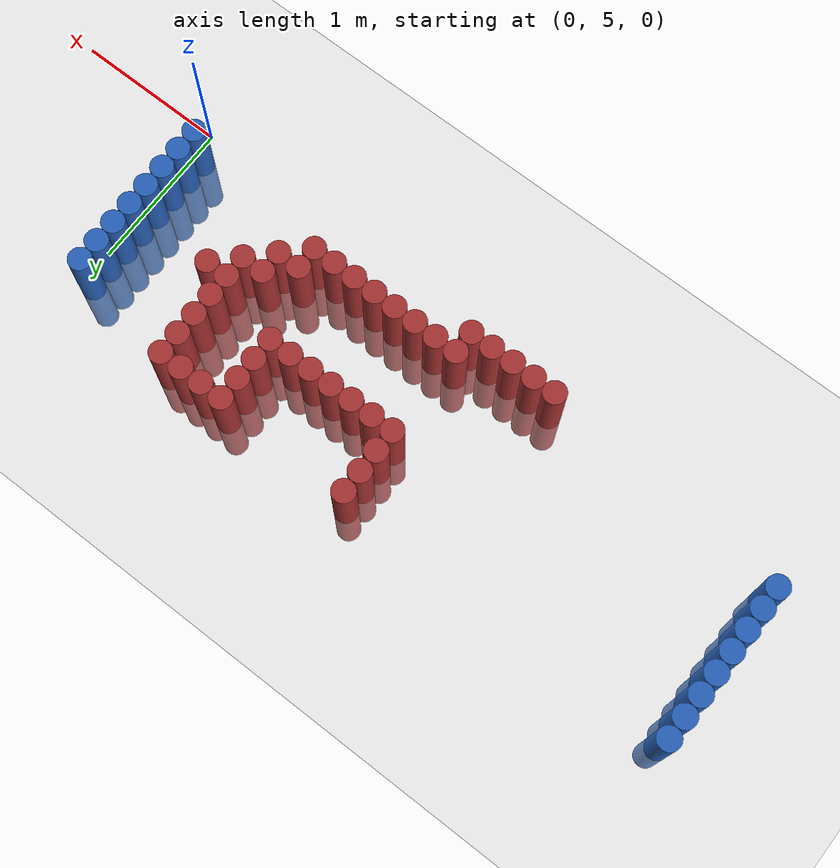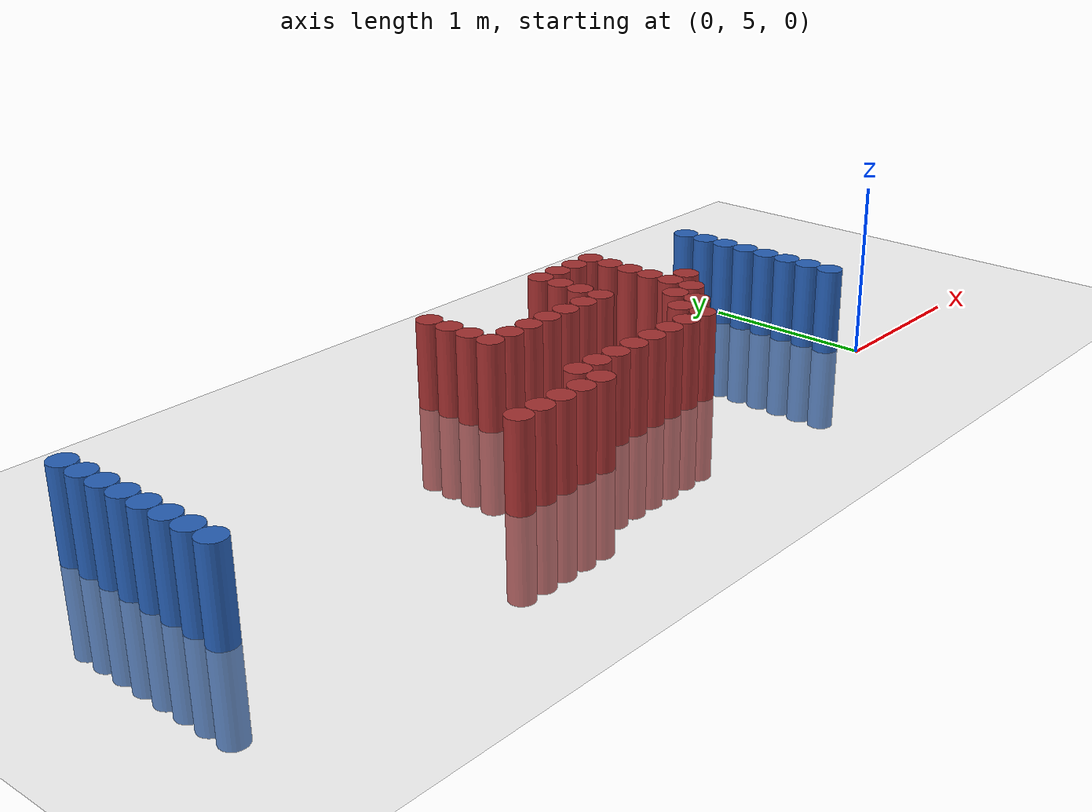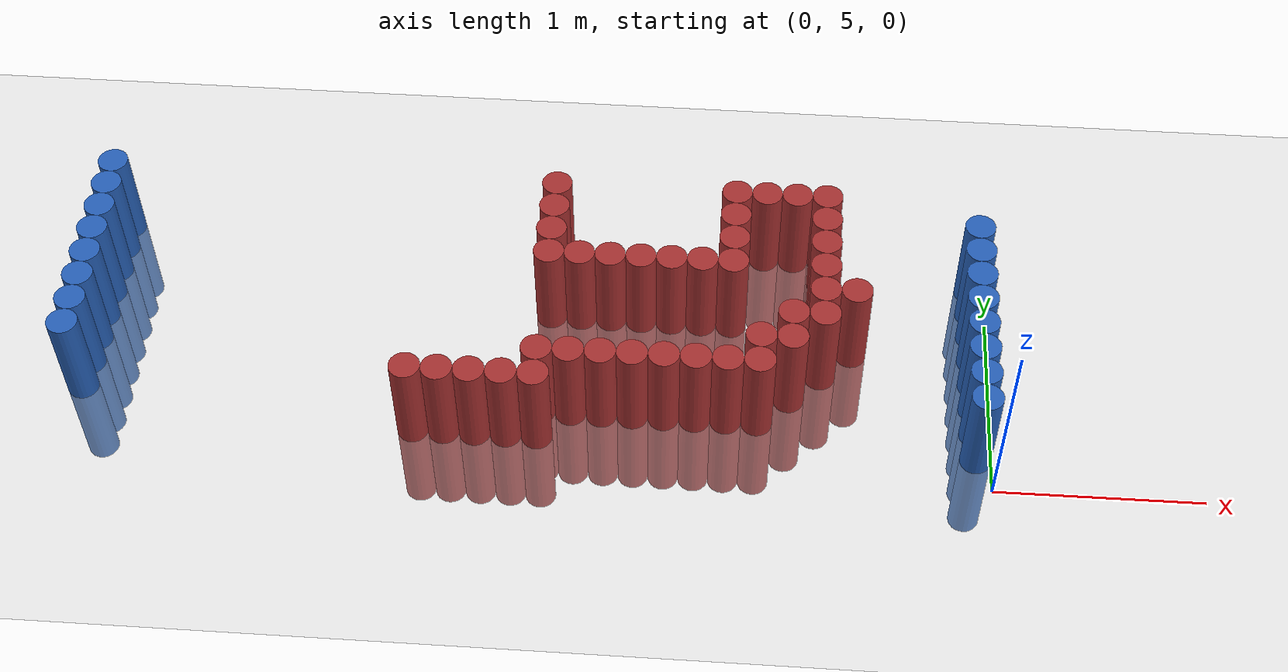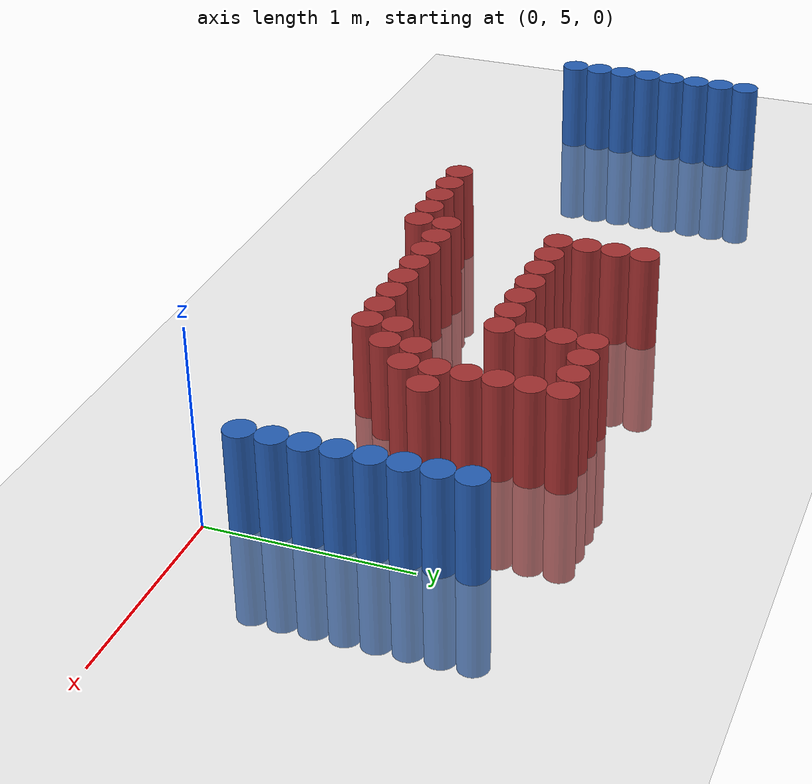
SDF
<sdf version="1.6">
 <world name="default">
  <model name="ground_plane">
   <static>1</static>
   <link name="link">
    <collision name="collision">
     <geometry><plane><normal>0 0 1</normal><size>100 100</size></plane></geometry>
     <surface><friction><ode><mu>100</mu><mu2>50</mu2></ode></friction></surface>
    </collision>
    <visual name="visual">
     <cast_shadows>0</cast_shadows>
     <geometry><plane><normal>0 0 1</normal><size>100 100</size></plane></geometry>
     <material>
      <script><uri>file://media/materials/scripts/gazebo.material</uri><name>Gazebo/Grey</name></script>
     </material>
    </visual>
   </link>
  </model>
  <model name="unit_cylinder_97">
   <static>1</static>
   <pose>-4.425000 5.325000 0.000000 0.000000 0.000000 0.000000</pose>
   <link name="link">
    <inertial>
     <mass>1</mass>
     <inertia><ixx>0.145833</ixx><ixy>0</ixy><ixz>0</ixz><iyy>0.145833</iyy><iyz>0</iyz><izz>0.125</izz></inertia>
    </inertial>
    <collision name="collision">
     <geometry><cylinder><radius>0.075000</radius><length>1</length></cylinder></geometry>
    </collision>
    <visual name="visual">
     <geometry><cylinder><radius>0.075000</radius><length>1</length></cylinder></geometry>
     <material>
      <ambient>0.152000 0.379000 0.720000 1</ambient>
      <diffuse>0.152000 0.379000 0.720000 1</diffuse>
     </material>
     <material>
      <script><name>Gazebo/Grey</name><uri>file://media/materials/scripts/gazebo.material</uri></script>
     </material>
    </visual>
   </link>
  </model>
  <model name="unit_cylinder_98">
   <static>1</static>
   <pose>-4.425000 5.475000 0.000000 0.000000 0.000000 0.000000</pose>
   <link name="link">
    <inertial>
     <mass>1</mass>
     <inertia><ixx>0.145833</ixx><ixy>0</ixy><ixz>0</ixz><iyy>0.145833</iyy><iyz>0</iyz><izz>0.125</izz></inertia>
    </inertial>
    <collision name="collision">
     <geometry><cylinder><radius>0.075000</radius><length>1</length></cylinder></geometry>
    </collision>
    <visual name="visual">
     <geometry><cylinder><radius>0.075000</radius><length>1</length></cylinder></geometry>
     <material>
      <ambient>0.152000 0.379000 0.720000 1</ambient>
      <diffuse>0.152000 0.379000 0.720000 1</diffuse>
     </material>
     <material>
      <script><name>Gazebo/Grey</name><uri>file://media/materials/scripts/gazebo.material</uri></script>
     </material>
    </visual>
   </link>
  </model>
  <model name="unit_cylinder_99">
   <static>1</static>
   <pose>-4.425000 5.625000 0.000000 0.000000 0.000000 0.000000</pose>
   <link name="link">
    <inertial>
     <mass>1</mass>
     <inertia><ixx>0.145833</ixx><ixy>0</ixy><ixz>0</ixz><iyy>0.145833</iyy><iyz>0</iyz><izz>0.125</izz></inertia>
    </inertial>
    <collision name="collision">
     <geometry><cylinder><radius>0.075000</radius><length>1</length></cylinder></geometry>
    </collision>
    <visual name="visual">
     <geometry><cylinder><radius>0.075000</radius><length>1</length></cylinder></geometry>
     <material>
      <ambient>0.152000 0.379000 0.720000 1</ambient>
      <diffuse>0.152000 0.379000 0.720000 1</diffuse>
     </material>
     <material>
      <script><name>Gazebo/Grey</name><uri>file://media/materials/scripts/gazebo.material</uri></script>
     </material>
    </visual>
   </link>
  </model>
  <model name="unit_cylinder_100">
   <static>1</static>
   <pose>-4.425000 5.775000 0.000000 0.000000 0.000000 0.000000</pose>
   <link name="link">
    <inertial>
     <mass>1</mass>
     <inertia><ixx>0.145833</ixx><ixy>0</ixy><ixz>0</ixz><iyy>0.145833</iyy><iyz>0</iyz><izz>0.125</izz></inertia>
    </inertial>
    <collision name="collision">
     <geometry><cylinder><radius>0.075000</radius><length>1</length></cylinder></geometry>
    </collision>
    <visual name="visual">
     <geometry><cylinder><radius>0.075000</radius><length>1</length></cylinder></geometry>
     <material>
      <ambient>0.152000 0.379000 0.720000 1</ambient>
      <diffuse>0.152000 0.379000 0.720000 1</diffuse>
     </material>
     <material>
      <script><name>Gazebo/Grey</name><uri>file://media/materials/scripts/gazebo.material</uri></script>
     </material>
    </visual>
   </link>
  </model>
  <model name="unit_cylinder_101">
   <static>1</static>
   <pose>-4.425000 5.925000 0.000000 0.000000 0.000000 0.000000</pose>
   <link name="link">
    <inertial>
     <mass>1</mass>
     <inertia><ixx>0.145833</ixx><ixy>0</ixy><ixz>0</ixz><iyy>0.145833</iyy><iyz>0</iyz><izz>0.125</izz></inertia>
    </inertial>
    <collision name="collision">
     <geometry><cylinder><radius>0.075000</radius><length>1</length></cylinder></geometry>
    </collision>
    <visual name="visual">
     <geometry><cylinder><radius>0.075000</radius><length>1</length></cylinder></geometry>
     <material>
      <ambient>0.152000 0.379000 0.720000 1</ambient>
      <diffuse>0.152000 0.379000 0.720000 1</diffuse>
     </material>
     <material>
      <script><name>Gazebo/Grey</name><uri>file://media/materials/scripts/gazebo.material</uri></script>
     </material>
    </visual>
   </link>
  </model>
  <model name="unit_cylinder_102">
   <static>1</static>
   <pose>-4.425000 6.075000 0.000000 0.000000 0.000000 0.000000</pose>
   <link name="link">
    <inertial>
     <mass>1</mass>
     <inertia><ixx>0.145833</ixx><ixy>0</ixy><ixz>0</ixz><iyy>0.145833</iyy><iyz>0</iyz><izz>0.125</izz></inertia>
    </inertial>
    <collision name="collision">
     <geometry><cylinder><radius>0.075000</radius><length>1</length></cylinder></geometry>
    </collision>
    <visual name="visual">
     <geometry><cylinder><radius>0.075000</radius><length>1</length></cylinder></geometry>
     <material>
      <ambient>0.152000 0.379000 0.720000 1</ambient>
      <diffuse>0.152000 0.379000 0.720000 1</diffuse>
     </material>
     <material>
      <script><name>Gazebo/Grey</name><uri>file://media/materials/scripts/gazebo.material</uri></script>
     </material>
    </visual>
   </link>
  </model>
  <model name="unit_cylinder_103">
   <static>1</static>
   <pose>-4.425000 6.225000 0.000000 0.000000 0.000000 0.000000</pose>
   <link name="link">
    <inertial>
     <mass>1</mass>
     <inertia><ixx>0.145833</ixx><ixy>0</ixy><ixz>0</ixz><iyy>0.145833</iyy><iyz>0</iyz><izz>0.125</izz></inertia>
    </inertial>
    <collision name="collision">
     <geometry><cylinder><radius>0.075000</radius><length>1</length></cylinder></geometry>
    </collision>
    <visual name="visual">
     <geometry><cylinder><radius>0.075000</radius><length>1</length></cylinder></geometry>
     <material>
      <ambient>0.152000 0.379000 0.720000 1</ambient>
      <diffuse>0.152000 0.379000 0.720000 1</diffuse>
     </material>
     <material>
      <script><name>Gazebo/Grey</name><uri>file://media/materials/scripts/gazebo.material</uri></script>
     </material>
    </visual>
   </link>
  </model>
  <model name="unit_cylinder_104">
   <static>1</static>
   <pose>-4.425000 6.375000 0.000000 0.000000 0.000000 0.000000</pose>
   <link name="link">
    <inertial>
     <mass>1</mass>
     <inertia><ixx>0.145833</ixx><ixy>0</ixy><ixz>0</ixz><iyy>0.145833</iyy><iyz>0</iyz><izz>0.125</izz></inertia>
    </inertial>
    <collision name="collision">
     <geometry><cylinder><radius>0.075000</radius><length>1</length></cylinder></geometry>
    </collision>
    <visual name="visual">
     <geometry><cylinder><radius>0.075000</radius><length>1</length></cylinder></geometry>
     <material>
      <ambient>0.152000 0.379000 0.720000 1</ambient>
      <diffuse>0.152000 0.379000 0.720000 1</diffuse>
     </material>
     <material>
      <script><name>Gazebo/Grey</name><uri>file://media/materials/scripts/gazebo.material</uri></script>
     </material>
    </visual>
   </link>
  </model>
  <model name="unit_cylinder_146">
   <static>1</static>
   <pose>-2.775000 5.175000 0.000000 0.000000 0.000000 0.000000</pose>
   <link name="link">
    <inertial>
     <mass>1</mass>
     <inertia><ixx>0.145833</ixx><ixy>0</ixy><ixz>0</ixz><iyy>0.145833</iyy><iyz>0</iyz><izz>0.125</izz></inertia>
    </inertial>
    <collision name="collision">
     <geometry><cylinder><radius>0.075000</radius><length>1</length></cylinder></geometry>
    </collision>
    <visual name="visual">
     <geometry><cylinder><radius>0.075000</radius><length>1</length></cylinder></geometry>
     <material>
      <ambient>0.648000 0.192000 0.192000 1</ambient>
      <diffuse>0.648000 0.192000 0.192000 1</diffuse>
     </material>
     <material>
      <script><name>Gazebo/Grey</name><uri>file://media/materials/scripts/gazebo.material</uri></script>
     </material>
    </visual>
   </link>
  </model>
  <model name="unit_cylinder_148">
   <static>1</static>
   <pose>-2.625000 5.175000 0.000000 0.000000 0.000000 0.000000</pose>
   <link name="link">
    <inertial>
     <mass>1</mass>
     <inertia><ixx>0.145833</ixx><ixy>0</ixy><ixz>0</ixz><iyy>0.145833</iyy><iyz>0</iyz><izz>0.125</izz></inertia>
    </inertial>
    <collision name="collision">
     <geometry><cylinder><radius>0.075000</radius><length>1</length></cylinder></geometry>
    </collision>
    <visual name="visual">
     <geometry><cylinder><radius>0.075000</radius><length>1</length></cylinder></geometry>
     <material>
      <ambient>0.648000 0.192000 0.192000 1</ambient>
      <diffuse>0.648000 0.192000 0.192000 1</diffuse>
     </material>
     <material>
      <script><name>Gazebo/Grey</name><uri>file://media/materials/scripts/gazebo.material</uri></script>
     </material>
    </visual>
   </link>
  </model>
  <model name="unit_cylinder_150">
   <static>1</static>
   <pose>-2.475000 5.175000 0.000000 0.000000 0.000000 0.000000</pose>
   <link name="link">
    <inertial>
     <mass>1</mass>
     <inertia><ixx>0.145833</ixx><ixy>0</ixy><ixz>0</ixz><iyy>0.145833</iyy><iyz>0</iyz><izz>0.125</izz></inertia>
    </inertial>
    <collision name="collision">
     <geometry><cylinder><radius>0.075000</radius><length>1</length></cylinder></geometry>
    </collision>
    <visual name="visual">
     <geometry><cylinder><radius>0.075000</radius><length>1</length></cylinder></geometry>
     <material>
      <ambient>0.648000 0.192000 0.192000 1</ambient>
      <diffuse>0.648000 0.192000 0.192000 1</diffuse>
     </material>
     <material>
      <script><name>Gazebo/Grey</name><uri>file://media/materials/scripts/gazebo.material</uri></script>
     </material>
    </visual>
   </link>
  </model>
  <model name="unit_cylinder_152">
   <static>1</static>
   <pose>-2.325000 5.175000 0.000000 0.000000 0.000000 0.000000</pose>
   <link name="link">
    <inertial>
     <mass>1</mass>
     <inertia><ixx>0.145833</ixx><ixy>0</ixy><ixz>0</ixz><iyy>0.145833</iyy><iyz>0</iyz><izz>0.125</izz></inertia>
    </inertial>
    <collision name="collision">
     <geometry><cylinder><radius>0.075000</radius><length>1</length></cylinder></geometry>
    </collision>
    <visual name="visual">
     <geometry><cylinder><radius>0.075000</radius><length>1</length></cylinder></geometry>
     <material>
      <ambient>0.648000 0.192000 0.192000 1</ambient>
      <diffuse>0.648000 0.192000 0.192000 1</diffuse>
     </material>
     <material>
      <script><name>Gazebo/Grey</name><uri>file://media/materials/scripts/gazebo.material</uri></script>
     </material>
    </visual>
   </link>
  </model>
  <model name="unit_cylinder_154">
   <static>1</static>
   <pose>-2.175000 5.175000 0.000000 0.000000 0.000000 0.000000</pose>
   <link name="link">
    <inertial>
     <mass>1</mass>
     <inertia><ixx>0.145833</ixx><ixy>0</ixy><ixz>0</ixz><iyy>0.145833</iyy><iyz>0</iyz><izz>0.125</izz></inertia>
    </inertial>
    <collision name="collision">
     <geometry><cylinder><radius>0.075000</radius><length>1</length></cylinder></geometry>
    </collision>
    <visual name="visual">
     <geometry><cylinder><radius>0.075000</radius><length>1</length></cylinder></geometry>
     <material>
      <ambient>0.648000 0.192000 0.192000 1</ambient>
      <diffuse>0.648000 0.192000 0.192000 1</diffuse>
     </material>
     <material>
      <script><name>Gazebo/Grey</name><uri>file://media/materials/scripts/gazebo.material</uri></script>
     </material>
    </visual>
   </link>
  </model>
  <model name="unit_cylinder_155">
   <static>1</static>
   <pose>-2.175000 5.325000 0.000000 0.000000 0.000000 0.000000</pose>
   <link name="link">
    <inertial>
     <mass>1</mass>
     <inertia><ixx>0.145833</ixx><ixy>0</ixy><ixz>0</ixz><iyy>0.145833</iyy><iyz>0</iyz><izz>0.125</izz></inertia>
    </inertial>
    <collision name="collision">
     <geometry><cylinder><radius>0.075000</radius><length>1</length></cylinder></geometry>
    </collision>
    <visual name="visual">
     <geometry><cylinder><radius>0.075000</radius><length>1</length></cylinder></geometry>
     <material>
      <ambient>0.648000 0.192000 0.192000 1</ambient>
      <diffuse>0.648000 0.192000 0.192000 1</diffuse>
     </material>
     <material>
      <script><name>Gazebo/Grey</name><uri>file://media/materials/scripts/gazebo.material</uri></script>
     </material>
    </visual>
   </link>
  </model>
  <model name="unit_cylinder_156">
   <static>1</static>
   <pose>-2.175000 5.925000 0.000000 0.000000 0.000000 0.000000</pose>
   <link name="link">
    <inertial>
     <mass>1</mass>
     <inertia><ixx>0.145833</ixx><ixy>0</ixy><ixz>0</ixz><iyy>0.145833</iyy><iyz>0</iyz><izz>0.125</izz></inertia>
    </inertial>
    <collision name="collision">
     <geometry><cylinder><radius>0.075000</radius><length>1</length></cylinder></geometry>
    </collision>
    <visual name="visual">
     <geometry><cylinder><radius>0.075000</radius><length>1</length></cylinder></geometry>
     <material>
      <ambient>0.648000 0.192000 0.192000 1</ambient>
      <diffuse>0.648000 0.192000 0.192000 1</diffuse>
     </material>
     <material>
      <script><name>Gazebo/Grey</name><uri>file://media/materials/scripts/gazebo.material</uri></script>
     </material>
    </visual>
   </link>
  </model>
  <model name="unit_cylinder_157">
   <static>1</static>
   <pose>-2.175000 6.075000 0.000000 0.000000 0.000000 0.000000</pose>
   <link name="link">
    <inertial>
     <mass>1</mass>
     <inertia><ixx>0.145833</ixx><ixy>0</ixy><ixz>0</ixz><iyy>0.145833</iyy><iyz>0</iyz><izz>0.125</izz></inertia>
    </inertial>
    <collision name="collision">
     <geometry><cylinder><radius>0.075000</radius><length>1</length></cylinder></geometry>
    </collision>
    <visual name="visual">
     <geometry><cylinder><radius>0.075000</radius><length>1</length></cylinder></geometry>
     <material>
      <ambient>0.648000 0.192000 0.192000 1</ambient>
      <diffuse>0.648000 0.192000 0.192000 1</diffuse>
     </material>
     <material>
      <script><name>Gazebo/Grey</name><uri>file://media/materials/scripts/gazebo.material</uri></script>
     </material>
    </visual>
   </link>
  </model>
  <model name="unit_cylinder_158">
   <static>1</static>
   <pose>-2.175000 6.225000 0.000000 0.000000 0.000000 0.000000</pose>
   <link name="link">
    <inertial>
     <mass>1</mass>
     <inertia><ixx>0.145833</ixx><ixy>0</ixy><ixz>0</ixz><iyy>0.145833</iyy><iyz>0</iyz><izz>0.125</izz></inertia>
    </inertial>
    <collision name="collision">
     <geometry><cylinder><radius>0.075000</radius><length>1</length></cylinder></geometry>
    </collision>
    <visual name="visual">
     <geometry><cylinder><radius>0.075000</radius><length>1</length></cylinder></geometry>
     <material>
      <ambient>0.648000 0.192000 0.192000 1</ambient>
      <diffuse>0.648000 0.192000 0.192000 1</diffuse>
     </material>
     <material>
      <script><name>Gazebo/Grey</name><uri>file://media/materials/scripts/gazebo.material</uri></script>
     </material>
    </visual>
   </link>
  </model>
  <model name="unit_cylinder_159">
   <static>1</static>
   <pose>-2.175000 6.375000 0.000000 0.000000 0.000000 0.000000</pose>
   <link name="link">
    <inertial>
     <mass>1</mass>
     <inertia><ixx>0.145833</ixx><ixy>0</ixy><ixz>0</ixz><iyy>0.145833</iyy><iyz>0</iyz><izz>0.125</izz></inertia>
    </inertial>
    <collision name="collision">
     <geometry><cylinder><radius>0.075000</radius><length>1</length></cylinder></geometry>
    </collision>
    <visual name="visual">
     <geometry><cylinder><radius>0.075000</radius><length>1</length></cylinder></geometry>
     <material>
      <ambient>0.648000 0.192000 0.192000 1</ambient>
      <diffuse>0.648000 0.192000 0.192000 1</diffuse>
     </material>
     <material>
      <script><name>Gazebo/Grey</name><uri>file://media/materials/scripts/gazebo.material</uri></script>
     </material>
    </visual>
   </link>
  </model>
  <model name="unit_cylinder_169">
   <static>1</static>
   <pose>-2.025000 5.325000 0.000000 0.000000 0.000000 0.000000</pose>
   <link name="link">
    <inertial>
     <mass>1</mass>
     <inertia><ixx>0.145833</ixx><ixy>0</ixy><ixz>0</ixz><iyy>0.145833</iyy><iyz>0</iyz><izz>0.125</izz></inertia>
    </inertial>
    <collision name="collision">
     <geometry><cylinder><radius>0.075000</radius><length>1</length></cylinder></geometry>
    </collision>
    <visual name="visual">
     <geometry><cylinder><radius>0.075000</radius><length>1</length></cylinder></geometry>
     <material>
      <ambient>0.648000 0.192000 0.192000 1</ambient>
      <diffuse>0.648000 0.192000 0.192000 1</diffuse>
     </material>
     <material>
      <script><name>Gazebo/Grey</name><uri>file://media/materials/scripts/gazebo.material</uri></script>
     </material>
    </visual>
   </link>
  </model>
  <model name="unit_cylinder_170">
   <static>1</static>
   <pose>-2.025000 5.925000 0.000000 0.000000 0.000000 0.000000</pose>
   <link name="link">
    <inertial>
     <mass>1</mass>
     <inertia><ixx>0.145833</ixx><ixy>0</ixy><ixz>0</ixz><iyy>0.145833</iyy><iyz>0</iyz><izz>0.125</izz></inertia>
    </inertial>
    <collision name="collision">
     <geometry><cylinder><radius>0.075000</radius><length>1</length></cylinder></geometry>
    </collision>
    <visual name="visual">
     <geometry><cylinder><radius>0.075000</radius><length>1</length></cylinder></geometry>
     <material>
      <ambient>0.648000 0.192000 0.192000 1</ambient>
      <diffuse>0.648000 0.192000 0.192000 1</diffuse>
     </material>
     <material>
      <script><name>Gazebo/Grey</name><uri>file://media/materials/scripts/gazebo.material</uri></script>
     </material>
    </visual>
   </link>
  </model>
  <model name="unit_cylinder_173">
   <static>1</static>
   <pose>-1.875000 5.325000 0.000000 0.000000 0.000000 0.000000</pose>
   <link name="link">
    <inertial>
     <mass>1</mass>
     <inertia><ixx>0.145833</ixx><ixy>0</ixy><ixz>0</ixz><iyy>0.145833</iyy><iyz>0</iyz><izz>0.125</izz></inertia>
    </inertial>
    <collision name="collision">
     <geometry><cylinder><radius>0.075000</radius><length>1</length></cylinder></geometry>
    </collision>
    <visual name="visual">
     <geometry><cylinder><radius>0.075000</radius><length>1</length></cylinder></geometry>
     <material>
      <ambient>0.648000 0.192000 0.192000 1</ambient>
      <diffuse>0.648000 0.192000 0.192000 1</diffuse>
     </material>
     <material>
      <script><name>Gazebo/Grey</name><uri>file://media/materials/scripts/gazebo.material</uri></script>
     </material>
    </visual>
   </link>
  </model>
  <model name="unit_cylinder_174">
   <static>1</static>
   <pose>-1.875000 5.925000 0.000000 0.000000 0.000000 0.000000</pose>
   <link name="link">
    <inertial>
     <mass>1</mass>
     <inertia><ixx>0.145833</ixx><ixy>0</ixy><ixz>0</ixz><iyy>0.145833</iyy><iyz>0</iyz><izz>0.125</izz></inertia>
    </inertial>
    <collision name="collision">
     <geometry><cylinder><radius>0.075000</radius><length>1</length></cylinder></geometry>
    </collision>
    <visual name="visual">
     <geometry><cylinder><radius>0.075000</radius><length>1</length></cylinder></geometry>
     <material>
      <ambient>0.648000 0.192000 0.192000 1</ambient>
      <diffuse>0.648000 0.192000 0.192000 1</diffuse>
     </material>
     <material>
      <script><name>Gazebo/Grey</name><uri>file://media/materials/scripts/gazebo.material</uri></script>
     </material>
    </visual>
   </link>
  </model>
  <model name="unit_cylinder_186">
   <static>1</static>
   <pose>-1.725000 5.325000 0.000000 0.000000 0.000000 0.000000</pose>
   <link name="link">
    <inertial>
     <mass>1</mass>
     <inertia><ixx>0.145833</ixx><ixy>0</ixy><ixz>0</ixz><iyy>0.145833</iyy><iyz>0</iyz><izz>0.125</izz></inertia>
    </inertial>
    <collision name="collision">
     <geometry><cylinder><radius>0.075000</radius><length>1</length></cylinder></geometry>
    </collision>
    <visual name="visual">
     <geometry><cylinder><radius>0.075000</radius><length>1</length></cylinder></geometry>
     <material>
      <ambient>0.648000 0.192000 0.192000 1</ambient>
      <diffuse>0.648000 0.192000 0.192000 1</diffuse>
     </material>
     <material>
      <script><name>Gazebo/Grey</name><uri>file://media/materials/scripts/gazebo.material</uri></script>
     </material>
    </visual>
   </link>
  </model>
  <model name="unit_cylinder_187">
   <static>1</static>
   <pose>-1.725000 5.925000 0.000000 0.000000 0.000000 0.000000</pose>
   <link name="link">
    <inertial>
     <mass>1</mass>
     <inertia><ixx>0.145833</ixx><ixy>0</ixy><ixz>0</ixz><iyy>0.145833</iyy><iyz>0</iyz><izz>0.125</izz></inertia>
    </inertial>
    <collision name="collision">
     <geometry><cylinder><radius>0.075000</radius><length>1</length></cylinder></geometry>
    </collision>
    <visual name="visual">
     <geometry><cylinder><radius>0.075000</radius><length>1</length></cylinder></geometry>
     <material>
      <ambient>0.648000 0.192000 0.192000 1</ambient>
      <diffuse>0.648000 0.192000 0.192000 1</diffuse>
     </material>
     <material>
      <script><name>Gazebo/Grey</name><uri>file://media/materials/scripts/gazebo.material</uri></script>
     </material>
    </visual>
   </link>
  </model>
  <model name="unit_cylinder_190">
   <static>1</static>
   <pose>-1.575000 5.325000 0.000000 0.000000 0.000000 0.000000</pose>
   <link name="link">
    <inertial>
     <mass>1</mass>
     <inertia><ixx>0.145833</ixx><ixy>0</ixy><ixz>0</ixz><iyy>0.145833</iyy><iyz>0</iyz><izz>0.125</izz></inertia>
    </inertial>
    <collision name="collision">
     <geometry><cylinder><radius>0.075000</radius><length>1</length></cylinder></geometry>
    </collision>
    <visual name="visual">
     <geometry><cylinder><radius>0.075000</radius><length>1</length></cylinder></geometry>
     <material>
      <ambient>0.648000 0.192000 0.192000 1</ambient>
      <diffuse>0.648000 0.192000 0.192000 1</diffuse>
     </material>
     <material>
      <script><name>Gazebo/Grey</name><uri>file://media/materials/scripts/gazebo.material</uri></script>
     </material>
    </visual>
   </link>
  </model>
  <model name="unit_cylinder_191">
   <static>1</static>
   <pose>-1.575000 5.925000 0.000000 0.000000 0.000000 0.000000</pose>
   <link name="link">
    <inertial>
     <mass>1</mass>
     <inertia><ixx>0.145833</ixx><ixy>0</ixy><ixz>0</ixz><iyy>0.145833</iyy><iyz>0</iyz><izz>0.125</izz></inertia>
    </inertial>
    <collision name="collision">
     <geometry><cylinder><radius>0.075000</radius><length>1</length></cylinder></geometry>
    </collision>
    <visual name="visual">
     <geometry><cylinder><radius>0.075000</radius><length>1</length></cylinder></geometry>
     <material>
      <ambient>0.648000 0.192000 0.192000 1</ambient>
      <diffuse>0.648000 0.192000 0.192000 1</diffuse>
     </material>
     <material>
      <script><name>Gazebo/Grey</name><uri>file://media/materials/scripts/gazebo.material</uri></script>
     </material>
    </visual>
   </link>
  </model>
  <model name="unit_cylinder_194">
   <static>1</static>
   <pose>-1.425000 5.325000 0.000000 0.000000 0.000000 0.000000</pose>
   <link name="link">
    <inertial>
     <mass>1</mass>
     <inertia><ixx>0.145833</ixx><ixy>0</ixy><ixz>0</ixz><iyy>0.145833</iyy><iyz>0</iyz><izz>0.125</izz></inertia>
    </inertial>
    <collision name="collision">
     <geometry><cylinder><radius>0.075000</radius><length>1</length></cylinder></geometry>
    </collision>
    <visual name="visual">
     <geometry><cylinder><radius>0.075000</radius><length>1</length></cylinder></geometry>
     <material>
      <ambient>0.648000 0.192000 0.192000 1</ambient>
      <diffuse>0.648000 0.192000 0.192000 1</diffuse>
     </material>
     <material>
      <script><name>Gazebo/Grey</name><uri>file://media/materials/scripts/gazebo.material</uri></script>
     </material>
    </visual>
   </link>
  </model>
  <model name="unit_cylinder_195">
   <static>1</static>
   <pose>-1.425000 5.925000 0.000000 0.000000 0.000000 0.000000</pose>
   <link name="link">
    <inertial>
     <mass>1</mass>
     <inertia><ixx>0.145833</ixx><ixy>0</ixy><ixz>0</ixz><iyy>0.145833</iyy><iyz>0</iyz><izz>0.125</izz></inertia>
    </inertial>
    <collision name="collision">
     <geometry><cylinder><radius>0.075000</radius><length>1</length></cylinder></geometry>
    </collision>
    <visual name="visual">
     <geometry><cylinder><radius>0.075000</radius><length>1</length></cylinder></geometry>
     <material>
      <ambient>0.648000 0.192000 0.192000 1</ambient>
      <diffuse>0.648000 0.192000 0.192000 1</diffuse>
     </material>
     <material>
      <script><name>Gazebo/Grey</name><uri>file://media/materials/scripts/gazebo.material</uri></script>
     </material>
    </visual>
   </link>
  </model>
  <model name="unit_cylinder_199">
   <static>1</static>
   <pose>-1.275000 5.325000 0.000000 0.000000 0.000000 0.000000</pose>
   <link name="link">
    <inertial>
     <mass>1</mass>
     <inertia><ixx>0.145833</ixx><ixy>0</ixy><ixz>0</ixz><iyy>0.145833</iyy><iyz>0</iyz><izz>0.125</izz></inertia>
    </inertial>
    <collision name="collision">
     <geometry><cylinder><radius>0.075000</radius><length>1</length></cylinder></geometry>
    </collision>
    <visual name="visual">
     <geometry><cylinder><radius>0.075000</radius><length>1</length></cylinder></geometry>
     <material>
      <ambient>0.648000 0.192000 0.192000 1</ambient>
      <diffuse>0.648000 0.192000 0.192000 1</diffuse>
     </material>
     <material>
      <script><name>Gazebo/Grey</name><uri>file://media/materials/scripts/gazebo.material</uri></script>
     </material>
    </visual>
   </link>
  </model>
  <model name="unit_cylinder_200">
   <static>1</static>
   <pose>-1.275000 5.925000 0.000000 0.000000 0.000000 0.000000</pose>
   <link name="link">
    <inertial>
     <mass>1</mass>
     <inertia><ixx>0.145833</ixx><ixy>0</ixy><ixz>0</ixz><iyy>0.145833</iyy><iyz>0</iyz><izz>0.125</izz></inertia>
    </inertial>
    <collision name="collision">
     <geometry><cylinder><radius>0.075000</radius><length>1</length></cylinder></geometry>
    </collision>
    <visual name="visual">
     <geometry><cylinder><radius>0.075000</radius><length>1</length></cylinder></geometry>
     <material>
      <ambient>0.648000 0.192000 0.192000 1</ambient>
      <diffuse>0.648000 0.192000 0.192000 1</diffuse>
     </material>
     <material>
      <script><name>Gazebo/Grey</name><uri>file://media/materials/scripts/gazebo.material</uri></script>
     </material>
    </visual>
   </link>
  </model>
  <model name="unit_cylinder_201">
   <static>1</static>
   <pose>-1.275000 6.075000 0.000000 0.000000 0.000000 0.000000</pose>
   <link name="link">
    <inertial>
     <mass>1</mass>
     <inertia><ixx>0.145833</ixx><ixy>0</ixy><ixz>0</ixz><iyy>0.145833</iyy><iyz>0</iyz><izz>0.125</izz></inertia>
    </inertial>
    <collision name="collision">
     <geometry><cylinder><radius>0.075000</radius><length>1</length></cylinder></geometry>
    </collision>
    <visual name="visual">
     <geometry><cylinder><radius>0.075000</radius><length>1</length></cylinder></geometry>
     <material>
      <ambient>0.648000 0.192000 0.192000 1</ambient>
      <diffuse>0.648000 0.192000 0.192000 1</diffuse>
     </material>
     <material>
      <script><name>Gazebo/Grey</name><uri>file://media/materials/scripts/gazebo.material</uri></script>
     </material>
    </visual>
   </link>
  </model>
  <model name="unit_cylinder_202">
   <static>1</static>
   <pose>-1.275000 6.225000 0.000000 0.000000 0.000000 0.000000</pose>
   <link name="link">
    <inertial>
     <mass>1</mass>
     <inertia><ixx>0.145833</ixx><ixy>0</ixy><ixz>0</ixz><iyy>0.145833</iyy><iyz>0</iyz><izz>0.125</izz></inertia>
    </inertial>
    <collision name="collision">
     <geometry><cylinder><radius>0.075000</radius><length>1</length></cylinder></geometry>
    </collision>
    <visual name="visual">
     <geometry><cylinder><radius>0.075000</radius><length>1</length></cylinder></geometry>
     <material>
      <ambient>0.648000 0.192000 0.192000 1</ambient>
      <diffuse>0.648000 0.192000 0.192000 1</diffuse>
     </material>
     <material>
      <script><name>Gazebo/Grey</name><uri>file://media/materials/scripts/gazebo.material</uri></script>
     </material>
    </visual>
   </link>
  </model>
  <model name="unit_cylinder_203">
   <static>1</static>
   <pose>-1.275000 6.375000 0.000000 0.000000 0.000000 0.000000</pose>
   <link name="link">
    <inertial>
     <mass>1</mass>
     <inertia><ixx>0.145833</ixx><ixy>0</ixy><ixz>0</ixz><iyy>0.145833</iyy><iyz>0</iyz><izz>0.125</izz></inertia>
    </inertial>
    <collision name="collision">
     <geometry><cylinder><radius>0.075000</radius><length>1</length></cylinder></geometry>
    </collision>
    <visual name="visual">
     <geometry><cylinder><radius>0.075000</radius><length>1</length></cylinder></geometry>
     <material>
      <ambient>0.648000 0.192000 0.192000 1</ambient>
      <diffuse>0.648000 0.192000 0.192000 1</diffuse>
     </material>
     <material>
      <script><name>Gazebo/Grey</name><uri>file://media/materials/scripts/gazebo.material</uri></script>
     </material>
    </visual>
   </link>
  </model>
  <model name="unit_cylinder_210">
   <static>1</static>
   <pose>-1.125000 5.325000 0.000000 0.000000 0.000000 0.000000</pose>
   <link name="link">
    <inertial>
     <mass>1</mass>
     <inertia><ixx>0.145833</ixx><ixy>0</ixy><ixz>0</ixz><iyy>0.145833</iyy><iyz>0</iyz><izz>0.125</izz></inertia>
    </inertial>
    <collision name="collision">
     <geometry><cylinder><radius>0.075000</radius><length>1</length></cylinder></geometry>
    </collision>
    <visual name="visual">
     <geometry><cylinder><radius>0.075000</radius><length>1</length></cylinder></geometry>
     <material>
      <ambient>0.648000 0.192000 0.192000 1</ambient>
      <diffuse>0.648000 0.192000 0.192000 1</diffuse>
     </material>
     <material>
      <script><name>Gazebo/Grey</name><uri>file://media/materials/scripts/gazebo.material</uri></script>
     </material>
    </visual>
   </link>
  </model>
  <model name="unit_cylinder_211">
   <static>1</static>
   <pose>-1.125000 5.475000 0.000000 0.000000 0.000000 0.000000</pose>
   <link name="link">
    <inertial>
     <mass>1</mass>
     <inertia><ixx>0.145833</ixx><ixy>0</ixy><ixz>0</ixz><iyy>0.145833</iyy><iyz>0</iyz><izz>0.125</izz></inertia>
    </inertial>
    <collision name="collision">
     <geometry><cylinder><radius>0.075000</radius><length>1</length></cylinder></geometry>
    </collision>
    <visual name="visual">
     <geometry><cylinder><radius>0.075000</radius><length>1</length></cylinder></geometry>
     <material>
      <ambient>0.648000 0.192000 0.192000 1</ambient>
      <diffuse>0.648000 0.192000 0.192000 1</diffuse>
     </material>
     <material>
      <script><name>Gazebo/Grey</name><uri>file://media/materials/scripts/gazebo.material</uri></script>
     </material>
    </visual>
   </link>
  </model>
  <model name="unit_cylinder_212">
   <static>1</static>
   <pose>-1.125000 6.375000 0.000000 0.000000 0.000000 0.000000</pose>
   <link name="link">
    <inertial>
     <mass>1</mass>
     <inertia><ixx>0.145833</ixx><ixy>0</ixy><ixz>0</ixz><iyy>0.145833</iyy><iyz>0</iyz><izz>0.125</izz></inertia>
    </inertial>
    <collision name="collision">
     <geometry><cylinder><radius>0.075000</radius><length>1</length></cylinder></geometry>
    </collision>
    <visual name="visual">
     <geometry><cylinder><radius>0.075000</radius><length>1</length></cylinder></geometry>
     <material>
      <ambient>0.648000 0.192000 0.192000 1</ambient>
      <diffuse>0.648000 0.192000 0.192000 1</diffuse>
     </material>
     <material>
      <script><name>Gazebo/Grey</name><uri>file://media/materials/scripts/gazebo.material</uri></script>
     </material>
    </visual>
   </link>
  </model>
  <model name="unit_cylinder_217">
   <static>1</static>
   <pose>-0.975000 5.475000 0.000000 0.000000 0.000000 0.000000</pose>
   <link name="link">
    <inertial>
     <mass>1</mass>
     <inertia><ixx>0.145833</ixx><ixy>0</ixy><ixz>0</ixz><iyy>0.145833</iyy><iyz>0</iyz><izz>0.125</izz></inertia>
    </inertial>
    <collision name="collision">
     <geometry><cylinder><radius>0.075000</radius><length>1</length></cylinder></geometry>
    </collision>
    <visual name="visual">
     <geometry><cylinder><radius>0.075000</radius><length>1</length></cylinder></geometry>
     <material>
      <ambient>0.648000 0.192000 0.192000 1</ambient>
      <diffuse>0.648000 0.192000 0.192000 1</diffuse>
     </material>
     <material>
      <script><name>Gazebo/Grey</name><uri>file://media/materials/scripts/gazebo.material</uri></script>
     </material>
    </visual>
   </link>
  </model>
  <model name="unit_cylinder_218">
   <static>1</static>
   <pose>-0.975000 5.625000 0.000000 0.000000 0.000000 0.000000</pose>
   <link name="link">
    <inertial>
     <mass>1</mass>
     <inertia><ixx>0.145833</ixx><ixy>0</ixy><ixz>0</ixz><iyy>0.145833</iyy><iyz>0</iyz><izz>0.125</izz></inertia>
    </inertial>
    <collision name="collision">
     <geometry><cylinder><radius>0.075000</radius><length>1</length></cylinder></geometry>
    </collision>
    <visual name="visual">
     <geometry><cylinder><radius>0.075000</radius><length>1</length></cylinder></geometry>
     <material>
      <ambient>0.648000 0.192000 0.192000 1</ambient>
      <diffuse>0.648000 0.192000 0.192000 1</diffuse>
     </material>
     <material>
      <script><name>Gazebo/Grey</name><uri>file://media/materials/scripts/gazebo.material</uri></script>
     </material>
    </visual>
   </link>
  </model>
  <model name="unit_cylinder_219">
   <static>1</static>
   <pose>-0.975000 6.375000 0.000000 0.000000 0.000000 0.000000</pose>
   <link name="link">
    <inertial>
     <mass>1</mass>
     <inertia><ixx>0.145833</ixx><ixy>0</ixy><ixz>0</ixz><iyy>0.145833</iyy><iyz>0</iyz><izz>0.125</izz></inertia>
    </inertial>
    <collision name="collision">
     <geometry><cylinder><radius>0.075000</radius><length>1</length></cylinder></geometry>
    </collision>
    <visual name="visual">
     <geometry><cylinder><radius>0.075000</radius><length>1</length></cylinder></geometry>
     <material>
      <ambient>0.648000 0.192000 0.192000 1</ambient>
      <diffuse>0.648000 0.192000 0.192000 1</diffuse>
     </material>
     <material>
      <script><name>Gazebo/Grey</name><uri>file://media/materials/scripts/gazebo.material</uri></script>
     </material>
    </visual>
   </link>
  </model>
  <model name="unit_cylinder_229">
   <static>1</static>
   <pose>-0.825000 5.625000 0.000000 0.000000 0.000000 0.000000</pose>
   <link name="link">
    <inertial>
     <mass>1</mass>
     <inertia><ixx>0.145833</ixx><ixy>0</ixy><ixz>0</ixz><iyy>0.145833</iyy><iyz>0</iyz><izz>0.125</izz></inertia>
    </inertial>
    <collision name="collision">
     <geometry><cylinder><radius>0.075000</radius><length>1</length></cylinder></geometry>
    </collision>
    <visual name="visual">
     <geometry><cylinder><radius>0.075000</radius><length>1</length></cylinder></geometry>
     <material>
      <ambient>0.648000 0.192000 0.192000 1</ambient>
      <diffuse>0.648000 0.192000 0.192000 1</diffuse>
     </material>
     <material>
      <script><name>Gazebo/Grey</name><uri>file://media/materials/scripts/gazebo.material</uri></script>
     </material>
    </visual>
   </link>
  </model>
  <model name="unit_cylinder_230">
   <static>1</static>
   <pose>-0.825000 5.775000 0.000000 0.000000 0.000000 0.000000</pose>
   <link name="link">
    <inertial>
     <mass>1</mass>
     <inertia><ixx>0.145833</ixx><ixy>0</ixy><ixz>0</ixz><iyy>0.145833</iyy><iyz>0</iyz><izz>0.125</izz></inertia>
    </inertial>
    <collision name="collision">
     <geometry><cylinder><radius>0.075000</radius><length>1</length></cylinder></geometry>
    </collision>
    <visual name="visual">
     <geometry><cylinder><radius>0.075000</radius><length>1</length></cylinder></geometry>
     <material>
      <ambient>0.648000 0.192000 0.192000 1</ambient>
      <diffuse>0.648000 0.192000 0.192000 1</diffuse>
     </material>
     <material>
      <script><name>Gazebo/Grey</name><uri>file://media/materials/scripts/gazebo.material</uri></script>
     </material>
    </visual>
   </link>
  </model>
  <model name="unit_cylinder_231">
   <static>1</static>
   <pose>-0.825000 5.925000 0.000000 0.000000 0.000000 0.000000</pose>
   <link name="link">
    <inertial>
     <mass>1</mass>
     <inertia><ixx>0.145833</ixx><ixy>0</ixy><ixz>0</ixz><iyy>0.145833</iyy><iyz>0</iyz><izz>0.125</izz></inertia>
    </inertial>
    <collision name="collision">
     <geometry><cylinder><radius>0.075000</radius><length>1</length></cylinder></geometry>
    </collision>
    <visual name="visual">
     <geometry><cylinder><radius>0.075000</radius><length>1</length></cylinder></geometry>
     <material>
      <ambient>0.648000 0.192000 0.192000 1</ambient>
      <diffuse>0.648000 0.192000 0.192000 1</diffuse>
     </material>
     <material>
      <script><name>Gazebo/Grey</name><uri>file://media/materials/scripts/gazebo.material</uri></script>
     </material>
    </visual>
   </link>
  </model>
  <model name="unit_cylinder_232">
   <static>1</static>
   <pose>-0.825000 6.075000 0.000000 0.000000 0.000000 0.000000</pose>
   <link name="link">
    <inertial>
     <mass>1</mass>
     <inertia><ixx>0.145833</ixx><ixy>0</ixy><ixz>0</ixz><iyy>0.145833</iyy><iyz>0</iyz><izz>0.125</izz></inertia>
    </inertial>
    <collision name="collision">
     <geometry><cylinder><radius>0.075000</radius><length>1</length></cylinder></geometry>
    </collision>
    <visual name="visual">
     <geometry><cylinder><radius>0.075000</radius><length>1</length></cylinder></geometry>
     <material>
      <ambient>0.648000 0.192000 0.192000 1</ambient>
      <diffuse>0.648000 0.192000 0.192000 1</diffuse>
     </material>
     <material>
      <script><name>Gazebo/Grey</name><uri>file://media/materials/scripts/gazebo.material</uri></script>
     </material>
    </visual>
   </link>
  </model>
  <model name="unit_cylinder_233">
   <static>1</static>
   <pose>-0.825000 6.225000 0.000000 0.000000 0.000000 0.000000</pose>
   <link name="link">
    <inertial>
     <mass>1</mass>
     <inertia><ixx>0.145833</ixx><ixy>0</ixy><ixz>0</ixz><iyy>0.145833</iyy><iyz>0</iyz><izz>0.125</izz></inertia>
    </inertial>
    <collision name="collision">
     <geometry><cylinder><radius>0.075000</radius><length>1</length></cylinder></geometry>
    </collision>
    <visual name="visual">
     <geometry><cylinder><radius>0.075000</radius><length>1</length></cylinder></geometry>
     <material>
      <ambient>0.648000 0.192000 0.192000 1</ambient>
      <diffuse>0.648000 0.192000 0.192000 1</diffuse>
     </material>
     <material>
      <script><name>Gazebo/Grey</name><uri>file://media/materials/scripts/gazebo.material</uri></script>
     </material>
    </visual>
   </link>
  </model>
  <model name="unit_cylinder_234">
   <static>1</static>
   <pose>-0.825000 6.375000 0.000000 0.000000 0.000000 0.000000</pose>
   <link name="link">
    <inertial>
     <mass>1</mass>
     <inertia><ixx>0.145833</ixx><ixy>0</ixy><ixz>0</ixz><iyy>0.145833</iyy><iyz>0</iyz><izz>0.125</izz></inertia>
    </inertial>
    <collision name="collision">
     <geometry><cylinder><radius>0.075000</radius><length>1</length></cylinder></geometry>
    </collision>
    <visual name="visual">
     <geometry><cylinder><radius>0.075000</radius><length>1</length></cylinder></geometry>
     <material>
      <ambient>0.648000 0.192000 0.192000 1</ambient>
      <diffuse>0.648000 0.192000 0.192000 1</diffuse>
     </material>
     <material>
      <script><name>Gazebo/Grey</name><uri>file://media/materials/scripts/gazebo.material</uri></script>
     </material>
    </visual>
   </link>
  </model>
  <model name="unit_cylinder_237">
   <static>1</static>
   <pose>-0.675000 5.775000 0.000000 0.000000 0.000000 0.000000</pose>
   <link name="link">
    <inertial>
     <mass>1</mass>
     <inertia><ixx>0.145833</ixx><ixy>0</ixy><ixz>0</ixz><iyy>0.145833</iyy><iyz>0</iyz><izz>0.125</izz></inertia>
    </inertial>
    <collision name="collision">
     <geometry><cylinder><radius>0.075000</radius><length>1</length></cylinder></geometry>
    </collision>
    <visual name="visual">
     <geometry><cylinder><radius>0.075000</radius><length>1</length></cylinder></geometry>
     <material>
      <ambient>0.648000 0.192000 0.192000 1</ambient>
      <diffuse>0.648000 0.192000 0.192000 1</diffuse>
     </material>
     <material>
      <script><name>Gazebo/Grey</name><uri>file://media/materials/scripts/gazebo.material</uri></script>
     </material>
    </visual>
   </link>
  </model>
  <model name="unit_cylinder_238">
   <static>1</static>
   <pose>-0.075000 5.175000 0.000000 0.000000 0.000000 0.000000</pose>
   <link name="link">
    <inertial>
     <mass>1</mass>
     <inertia><ixx>0.145833</ixx><ixy>0</ixy><ixz>0</ixz><iyy>0.145833</iyy><iyz>0</iyz><izz>0.125</izz></inertia>
    </inertial>
    <collision name="collision">
     <geometry><cylinder><radius>0.075000</radius><length>1</length></cylinder></geometry>
    </collision>
    <visual name="visual">
     <geometry><cylinder><radius>0.075000</radius><length>1</length></cylinder></geometry>
     <material>
      <ambient>0.152000 0.379000 0.720000 1</ambient>
      <diffuse>0.152000 0.379000 0.720000 1</diffuse>
     </material>
     <material>
      <script><name>Gazebo/Grey</name><uri>file://media/materials/scripts/gazebo.material</uri></script>
     </material>
    </visual>
   </link>
  </model>
  <model name="unit_cylinder_239">
   <static>1</static>
   <pose>-0.075000 5.325000 0.000000 0.000000 0.000000 0.000000</pose>
   <link name="link">
    <inertial>
     <mass>1</mass>
     <inertia><ixx>0.145833</ixx><ixy>0</ixy><ixz>0</ixz><iyy>0.145833</iyy><iyz>0</iyz><izz>0.125</izz></inertia>
    </inertial>
    <collision name="collision">
     <geometry><cylinder><radius>0.075000</radius><length>1</length></cylinder></geometry>
    </collision>
    <visual name="visual">
     <geometry><cylinder><radius>0.075000</radius><length>1</length></cylinder></geometry>
     <material>
      <ambient>0.152000 0.379000 0.720000 1</ambient>
      <diffuse>0.152000 0.379000 0.720000 1</diffuse>
     </material>
     <material>
      <script><name>Gazebo/Grey</name><uri>file://media/materials/scripts/gazebo.material</uri></script>
     </material>
    </visual>
   </link>
  </model>
  <model name="unit_cylinder_240">
   <static>1</static>
   <pose>-0.075000 5.475000 0.000000 0.000000 0.000000 0.000000</pose>
   <link name="link">
    <inertial>
     <mass>1</mass>
     <inertia><ixx>0.145833</ixx><ixy>0</ixy><ixz>0</ixz><iyy>0.145833</iyy><iyz>0</iyz><izz>0.125</izz></inertia>
    </inertial>
    <collision name="collision">
     <geometry><cylinder><radius>0.075000</radius><length>1</length></cylinder></geometry>
    </collision>
    <visual name="visual">
     <geometry><cylinder><radius>0.075000</radius><length>1</length></cylinder></geometry>
     <material>
      <ambient>0.152000 0.379000 0.720000 1</ambient>
      <diffuse>0.152000 0.379000 0.720000 1</diffuse>
     </material>
     <material>
      <script><name>Gazebo/Grey</name><uri>file://media/materials/scripts/gazebo.material</uri></script>
     </material>
    </visual>
   </link>
  </model>
  <model name="unit_cylinder_241">
   <static>1</static>
   <pose>-0.075000 5.625000 0.000000 0.000000 0.000000 0.000000</pose>
   <link name="link">
    <inertial>
     <mass>1</mass>
     <inertia><ixx>0.145833</ixx><ixy>0</ixy><ixz>0</ixz><iyy>0.145833</iyy><iyz>0</iyz><izz>0.125</izz></inertia>
    </inertial>
    <collision name="collision">
     <geometry><cylinder><radius>0.075000</radius><length>1</length></cylinder></geometry>
    </collision>
    <visual name="visual">
     <geometry><cylinder><radius>0.075000</radius><length>1</length></cylinder></geometry>
     <material>
      <ambient>0.152000 0.379000 0.720000 1</ambient>
      <diffuse>0.152000 0.379000 0.720000 1</diffuse>
     </material>
     <material>
      <script><name>Gazebo/Grey</name><uri>file://media/materials/scripts/gazebo.material</uri></script>
     </material>
    </visual>
   </link>
  </model>
  <model name="unit_cylinder_242">
   <static>1</static>
   <pose>-0.075000 5.775000 0.000000 0.000000 0.000000 0.000000</pose>
   <link name="link">
    <inertial>
     <mass>1</mass>
     <inertia><ixx>0.145833</ixx><ixy>0</ixy><ixz>0</ixz><iyy>0.145833</iyy><iyz>0</iyz><izz>0.125</izz></inertia>
    </inertial>
    <collision name="collision">
     <geometry><cylinder><radius>0.075000</radius><length>1</length></cylinder></geometry>
    </collision>
    <visual name="visual">
     <geometry><cylinder><radius>0.075000</radius><length>1</length></cylinder></geometry>
     <material>
      <ambient>0.152000 0.379000 0.720000 1</ambient>
      <diffuse>0.152000 0.379000 0.720000 1</diffuse>
     </material>
     <material>
      <script><name>Gazebo/Grey</name><uri>file://media/materials/scripts/gazebo.material</uri></script>
     </material>
    </visual>
   </link>
  </model>
  <model name="unit_cylinder_243">
   <static>1</static>
   <pose>-0.075000 5.925000 0.000000 0.000000 0.000000 0.000000</pose>
   <link name="link">
    <inertial>
     <mass>1</mass>
     <inertia><ixx>0.145833</ixx><ixy>0</ixy><ixz>0</ixz><iyy>0.145833</iyy><iyz>0</iyz><izz>0.125</izz></inertia>
    </inertial>
    <collision name="collision">
     <geometry><cylinder><radius>0.075000</radius><length>1</length></cylinder></geometry>
    </collision>
    <visual name="visual">
     <geometry><cylinder><radius>0.075000</radius><length>1</length></cylinder></geometry>
     <material>
      <ambient>0.152000 0.379000 0.720000 1</ambient>
      <diffuse>0.152000 0.379000 0.720000 1</diffuse>
     </material>
     <material>
      <script><name>Gazebo/Grey</name><uri>file://media/materials/scripts/gazebo.material</uri></script>
     </material>
    </visual>
   </link>
  </model>
  <model name="unit_cylinder_244">
   <static>1</static>
   <pose>-0.075000 6.075000 0.000000 0.000000 0.000000 0.000000</pose>
   <link name="link">
    <inertial>
     <mass>1</mass>
     <inertia><ixx>0.145833</ixx><ixy>0</ixy><ixz>0</ixz><iyy>0.145833</iyy><iyz>0</iyz><izz>0.125</izz></inertia>
    </inertial>
    <collision name="collision">
     <geometry><cylinder><radius>0.075000</radius><length>1</length></cylinder></geometry>
    </collision>
    <visual name="visual">
     <geometry><cylinder><radius>0.075000</radius><length>1</length></cylinder></geometry>
     <material>
      <ambient>0.152000 0.379000 0.720000 1</ambient>
      <diffuse>0.152000 0.379000 0.720000 1</diffuse>
     </material>
     <material>
      <script><name>Gazebo/Grey</name><uri>file://media/materials/scripts/gazebo.material</uri></script>
     </material>
    </visual>
   </link>
  </model>
  <model name="unit_cylinder_245">
   <static>1</static>
   <pose>-0.075000 6.225000 0.000000 0.000000 0.000000 0.000000</pose>
   <link name="link">
    <inertial>
     <mass>1</mass>
     <inertia><ixx>0.145833</ixx><ixy>0</ixy><ixz>0</ixz><iyy>0.145833</iyy><iyz>0</iyz><izz>0.125</izz></inertia>
    </inertial>
    <collision name="collision">
     <geometry><cylinder><radius>0.075000</radius><length>1</length></cylinder></geometry>
    </collision>
    <visual name="visual">
     <geometry><cylinder><radius>0.075000</radius><length>1</length></cylinder></geometry>
     <material>
      <ambient>0.152000 0.379000 0.720000 1</ambient>
      <diffuse>0.152000 0.379000 0.720000 1</diffuse>
     </material>
     <material>
      <script><name>Gazebo/Grey</name><uri>file://media/materials/scripts/gazebo.material</uri></script>
     </material>
    </visual>
   </link>
  </model>
 </world>
</sdf>
